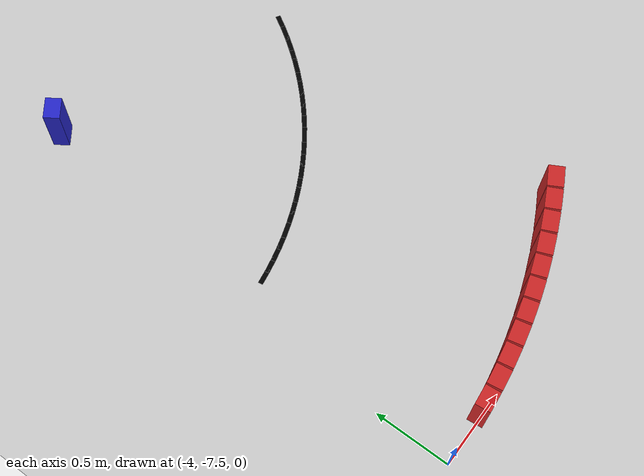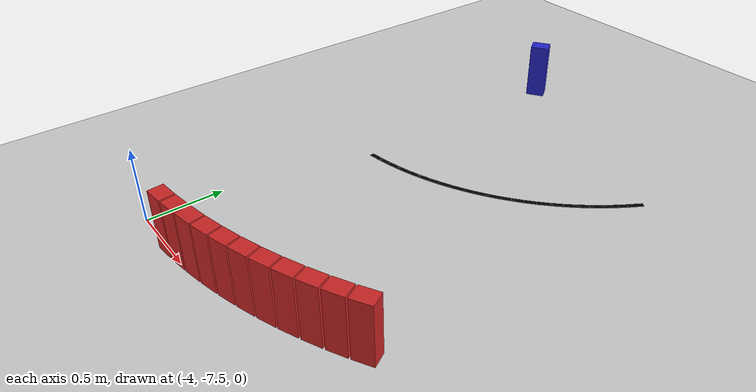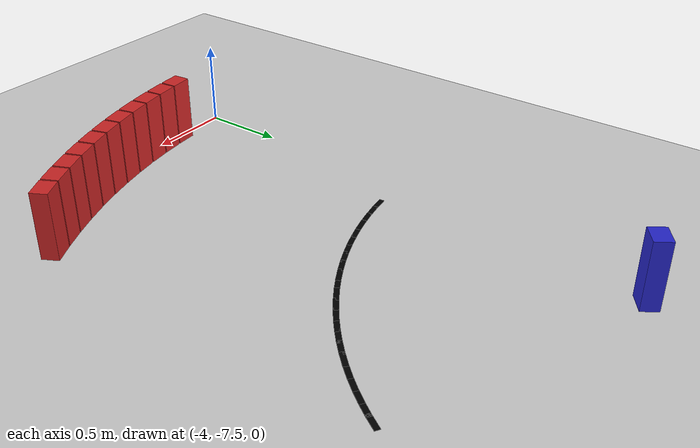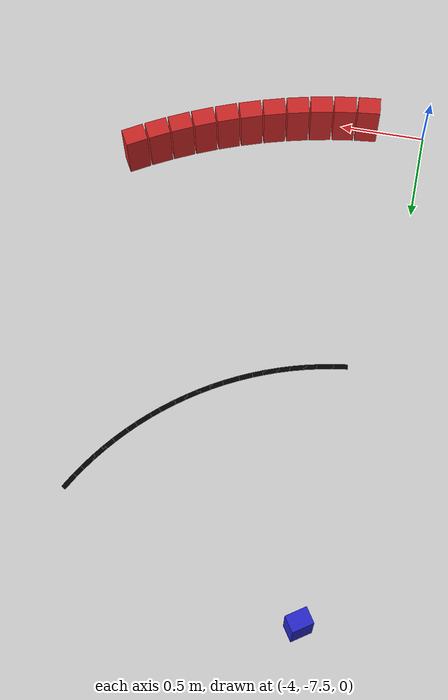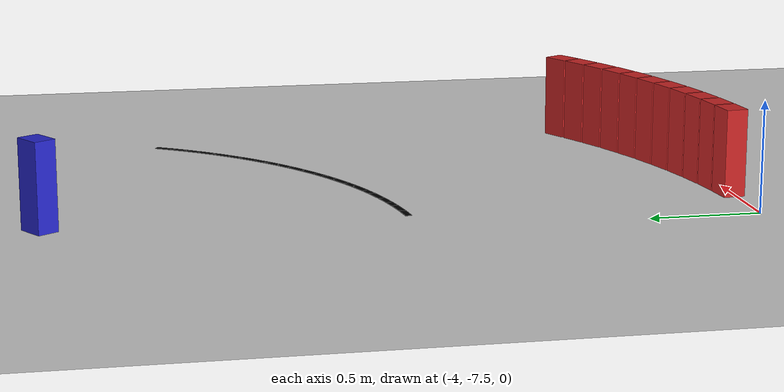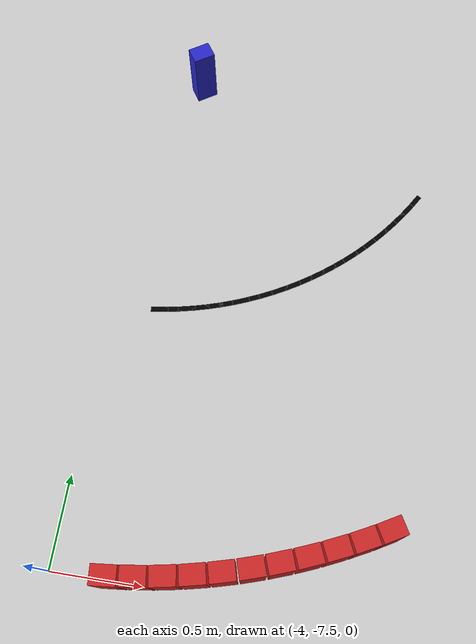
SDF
<sdf version="1.6">
 <world name="new_race_track">
  <include><uri>model://ground_plane</uri></include>
  <include><uri>model://sun</uri></include>
  <model name="race_track">
   <static>true</static>
   <link name="wall_link_55">
    <collision name="c"><geometry><box><size>0.1305 0.1 0.4</size></box></geometry></collision>
    <visual name="v">
     <geometry><box><size>0.1305 0.1 0.4</size></box></geometry>
     <material><ambient>0.15 0.15 0.8 1</ambient><diffuse>0.15 0.15 0.8 1</diffuse></material>
    </visual>
    <pose>-3.7245 -4.4168 0.200 0 0 0.5840</pose>
   </link>
   <link name="wall_link_455">
    <collision name="c"><geometry><box><size>0.1305 0.1 0.4</size></box></geometry></collision>
    <visual name="v">
     <geometry><box><size>0.1305 0.1 0.4</size></box></geometry>
     <material><ambient>0.8 0.15 0.15 1</ambient><diffuse>0.8 0.15 0.15 1</diffuse></material>
    </visual>
    <pose>-3.6482 -7.4819 0.200 0 0 0.1007</pose>
   </link>
   <link name="wall_link_456">
    <collision name="c"><geometry><box><size>0.1305 0.1 0.4</size></box></geometry></collision>
    <visual name="v">
     <geometry><box><size>0.1305 0.1 0.4</size></box></geometry>
     <material><ambient>0.8 0.15 0.15 1</ambient><diffuse>0.8 0.15 0.15 1</diffuse></material>
    </visual>
    <pose>-3.5083 -7.4649 0.200 0 0 0.1410</pose>
   </link>
   <link name="wall_link_457">
    <collision name="c"><geometry><box><size>0.1305 0.1 0.4</size></box></geometry></collision>
    <visual name="v">
     <geometry><box><size>0.1305 0.1 0.4</size></box></geometry>
     <material><ambient>0.8 0.15 0.15 1</ambient><diffuse>0.8 0.15 0.15 1</diffuse></material>
    </visual>
    <pose>-3.3692 -7.4423 0.200 0 0 0.1812</pose>
   </link>
   <link name="wall_link_458">
    <collision name="c"><geometry><box><size>0.1305 0.1 0.4</size></box></geometry></collision>
    <visual name="v">
     <geometry><box><size>0.1305 0.1 0.4</size></box></geometry>
     <material><ambient>0.8 0.15 0.15 1</ambient><diffuse>0.8 0.15 0.15 1</diffuse></material>
    </visual>
    <pose>-3.2311 -7.4141 0.200 0 0 0.2215</pose>
   </link>
   <link name="wall_link_459">
    <collision name="c"><geometry><box><size>0.1305 0.1 0.4</size></box></geometry></collision>
    <visual name="v">
     <geometry><box><size>0.1305 0.1 0.4</size></box></geometry>
     <material><ambient>0.8 0.15 0.15 1</ambient><diffuse>0.8 0.15 0.15 1</diffuse></material>
    </visual>
    <pose>-3.0942 -7.3803 0.200 0 0 0.2618</pose>
   </link>
   <link name="wall_link_460">
    <collision name="c"><geometry><box><size>0.1305 0.1 0.4</size></box></geometry></collision>
    <visual name="v">
     <geometry><box><size>0.1305 0.1 0.4</size></box></geometry>
     <material><ambient>0.8 0.15 0.15 1</ambient><diffuse>0.8 0.15 0.15 1</diffuse></material>
    </visual>
    <pose>-2.9589 -7.3411 0.200 0 0 0.3021</pose>
   </link>
   <link name="wall_link_461">
    <collision name="c"><geometry><box><size>0.1305 0.1 0.4</size></box></geometry></collision>
    <visual name="v">
     <geometry><box><size>0.1305 0.1 0.4</size></box></geometry>
     <material><ambient>0.8 0.15 0.15 1</ambient><diffuse>0.8 0.15 0.15 1</diffuse></material>
    </visual>
    <pose>-2.8252 -7.2965 0.200 0 0 0.3424</pose>
   </link>
   <link name="wall_link_462">
    <collision name="c"><geometry><box><size>0.1305 0.1 0.4</size></box></geometry></collision>
    <visual name="v">
     <geometry><box><size>0.1305 0.1 0.4</size></box></geometry>
     <material><ambient>0.8 0.15 0.15 1</ambient><diffuse>0.8 0.15 0.15 1</diffuse></material>
    </visual>
    <pose>-2.6934 -7.2465 0.200 0 0 0.3826</pose>
   </link>
   <link name="wall_link_463">
    <collision name="c"><geometry><box><size>0.1305 0.1 0.4</size></box></geometry></collision>
    <visual name="v">
     <geometry><box><size>0.1305 0.1 0.4</size></box></geometry>
     <material><ambient>0.8 0.15 0.15 1</ambient><diffuse>0.8 0.15 0.15 1</diffuse></material>
    </visual>
    <pose>-2.5637 -7.1913 0.200 0 0 0.4229</pose>
   </link>
   <link name="wall_link_464">
    <collision name="c"><geometry><box><size>0.1305 0.1 0.4</size></box></geometry></collision>
    <visual name="v">
     <geometry><box><size>0.1305 0.1 0.4</size></box></geometry>
     <material><ambient>0.8 0.15 0.15 1</ambient><diffuse>0.8 0.15 0.15 1</diffuse></material>
    </visual>
    <pose>-2.4364 -7.1309 0.200 0 0 0.4632</pose>
   </link>
   <link name="wall_link_465">
    <collision name="c"><geometry><box><size>0.1305 0.1 0.4</size></box></geometry></collision>
    <visual name="v">
     <geometry><box><size>0.1305 0.1 0.4</size></box></geometry>
     <material><ambient>0.8 0.15 0.15 1</ambient><diffuse>0.8 0.15 0.15 1</diffuse></material>
    </visual>
    <pose>-2.3116 -7.0654 0.200 0 0 0.5035</pose>
   </link>
   <link name="line_link_941">
    <visual name="v">
     <geometry><box><size>0.1005 0.03 0.002</size></box></geometry>
     <material><ambient>0 0 0 1</ambient><diffuse>0 0 0 1</diffuse></material>
    </visual>
    <pose>-3.7191 -5.9798 0.002 0 0 0.1410</pose>
   </link>
   <link name="line_link_942">
    <visual name="v">
     <geometry><box><size>0.1005 0.03 0.002</size></box></geometry>
     <material><ambient>0 0 0 1</ambient><diffuse>0 0 0 1</diffuse></material>
    </visual>
    <pose>-3.6396 -5.9668 0.002 0 0 0.1812</pose>
   </link>
   <link name="line_link_943">
    <visual name="v">
     <geometry><box><size>0.1005 0.03 0.002</size></box></geometry>
     <material><ambient>0 0 0 1</ambient><diffuse>0 0 0 1</diffuse></material>
    </visual>
    <pose>-3.5607 -5.9507 0.002 0 0 0.2215</pose>
   </link>
   <link name="line_link_944">
    <visual name="v">
     <geometry><box><size>0.1005 0.03 0.002</size></box></geometry>
     <material><ambient>0 0 0 1</ambient><diffuse>0 0 0 1</diffuse></material>
    </visual>
    <pose>-3.4825 -5.9315 0.002 0 0 0.2618</pose>
   </link>
   <link name="line_link_945">
    <visual name="v">
     <geometry><box><size>0.1005 0.03 0.002</size></box></geometry>
     <material><ambient>0 0 0 1</ambient><diffuse>0 0 0 1</diffuse></material>
    </visual>
    <pose>-3.4051 -5.9091 0.002 0 0 0.3021</pose>
   </link>
   <link name="line_link_946">
    <visual name="v">
     <geometry><box><size>0.1005 0.03 0.002</size></box></geometry>
     <material><ambient>0 0 0 1</ambient><diffuse>0 0 0 1</diffuse></material>
    </visual>
    <pose>-3.3287 -5.8836 0.002 0 0 0.3424</pose>
   </link>
   <link name="line_link_947">
    <visual name="v">
     <geometry><box><size>0.1005 0.03 0.002</size></box></geometry>
     <material><ambient>0 0 0 1</ambient><diffuse>0 0 0 1</diffuse></material>
    </visual>
    <pose>-3.2534 -5.8550 0.002 0 0 0.3826</pose>
   </link>
   <link name="line_link_948">
    <visual name="v">
     <geometry><box><size>0.1005 0.03 0.002</size></box></geometry>
     <material><ambient>0 0 0 1</ambient><diffuse>0 0 0 1</diffuse></material>
    </visual>
    <pose>-3.1793 -5.8234 0.002 0 0 0.4229</pose>
   </link>
   <link name="line_link_949">
    <visual name="v">
     <geometry><box><size>0.1005 0.03 0.002</size></box></geometry>
     <material><ambient>0 0 0 1</ambient><diffuse>0 0 0 1</diffuse></material>
    </visual>
    <pose>-3.1066 -5.7889 0.002 0 0 0.4632</pose>
   </link>
   <link name="line_link_950">
    <visual name="v">
     <geometry><box><size>0.1005 0.03 0.002</size></box></geometry>
     <material><ambient>0 0 0 1</ambient><diffuse>0 0 0 1</diffuse></material>
    </visual>
    <pose>-3.0353 -5.7515 0.002 0 0 0.5035</pose>
   </link>
   <link name="line_link_951">
    <visual name="v">
     <geometry><box><size>0.1005 0.03 0.002</size></box></geometry>
     <material><ambient>0 0 0 1</ambient><diffuse>0 0 0 1</diffuse></material>
    </visual>
    <pose>-2.9655 -5.7112 0.002 0 0 0.5437</pose>
   </link>
   <link name="line_link_952">
    <visual name="v">
     <geometry><box><size>0.1005 0.03 0.002</size></box></geometry>
     <material><ambient>0 0 0 1</ambient><diffuse>0 0 0 1</diffuse></material>
    </visual>
    <pose>-2.8975 -5.6682 0.002 0 0 0.5840</pose>
   </link>
   <link name="line_link_953">
    <visual name="v">
     <geometry><box><size>0.1005 0.03 0.002</size></box></geometry>
     <material><ambient>0 0 0 1</ambient><diffuse>0 0 0 1</diffuse></material>
    </visual>
    <pose>-2.8312 -5.6224 0.002 0 0 0.6243</pose>
   </link>
   <link name="line_link_954">
    <visual name="v">
     <geometry><box><size>0.1005 0.03 0.002</size></box></geometry>
     <material><ambient>0 0 0 1</ambient><diffuse>0 0 0 1</diffuse></material>
    </visual>
    <pose>-2.7668 -5.5740 0.002 0 0 0.6646</pose>
   </link>
   <link name="line_link_955">
    <visual name="v">
     <geometry><box><size>0.1005 0.03 0.002</size></box></geometry>
     <material><ambient>0 0 0 1</ambient><diffuse>0 0 0 1</diffuse></material>
    </visual>
    <pose>-2.7044 -5.5231 0.002 0 0 0.7048</pose>
   </link>
   <link name="line_link_956">
    <visual name="v">
     <geometry><box><size>0.1005 0.03 0.002</size></box></geometry>
     <material><ambient>0 0 0 1</ambient><diffuse>0 0 0 1</diffuse></material>
    </visual>
    <pose>-2.6442 -5.4697 0.002 0 0 0.7451</pose>
   </link>
   <link name="line_link_957">
    <visual name="v">
     <geometry><box><size>0.1005 0.03 0.002</size></box></geometry>
     <material><ambient>0 0 0 1</ambient><diffuse>0 0 0 1</diffuse></material>
    </visual>
    <pose>-2.5861 -5.4139 0.002 0 0 0.7854</pose>
   </link>
   <link name="line_link_958">
    <visual name="v">
     <geometry><box><size>0.1005 0.03 0.002</size></box></geometry>
     <material><ambient>0 0 0 1</ambient><diffuse>0 0 0 1</diffuse></material>
    </visual>
    <pose>-2.5303 -5.3558 0.002 0 0 0.8257</pose>
   </link>
   <link name="line_link_959">
    <visual name="v">
     <geometry><box><size>0.1005 0.03 0.002</size></box></geometry>
     <material><ambient>0 0 0 1</ambient><diffuse>0 0 0 1</diffuse></material>
    </visual>
    <pose>-2.4769 -5.2956 0.002 0 0 0.8660</pose>
   </link>
   <link name="line_link_960">
    <visual name="v">
     <geometry><box><size>0.1005 0.03 0.002</size></box></geometry>
     <material><ambient>0 0 0 1</ambient><diffuse>0 0 0 1</diffuse></material>
    </visual>
    <pose>-2.4260 -5.2332 0.002 0 0 0.9062</pose>
   </link>
   <link name="line_link_961">
    <visual name="v">
     <geometry><box><size>0.1005 0.03 0.002</size></box></geometry>
     <material><ambient>0 0 0 1</ambient><diffuse>0 0 0 1</diffuse></material>
    </visual>
    <pose>-2.3776 -5.1688 0.002 0 0 0.9465</pose>
   </link>
   <link name="line_link_962">
    <visual name="v">
     <geometry><box><size>0.1005 0.03 0.002</size></box></geometry>
     <material><ambient>0 0 0 1</ambient><diffuse>0 0 0 1</diffuse></material>
    </visual>
    <pose>-2.3318 -5.1025 0.002 0 0 0.9868</pose>
   </link>
   <link name="line_link_963">
    <visual name="v">
     <geometry><box><size>0.1005 0.03 0.002</size></box></geometry>
     <material><ambient>0 0 0 1</ambient><diffuse>0 0 0 1</diffuse></material>
    </visual>
    <pose>-2.2888 -5.0345 0.002 0 0 1.0271</pose>
   </link>
  </model>
 </world>
</sdf>
